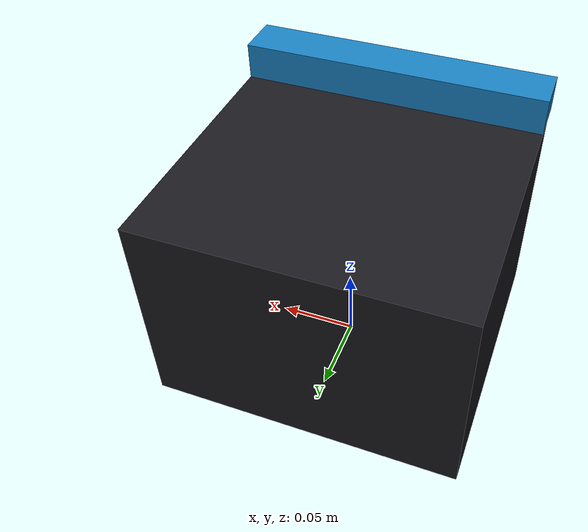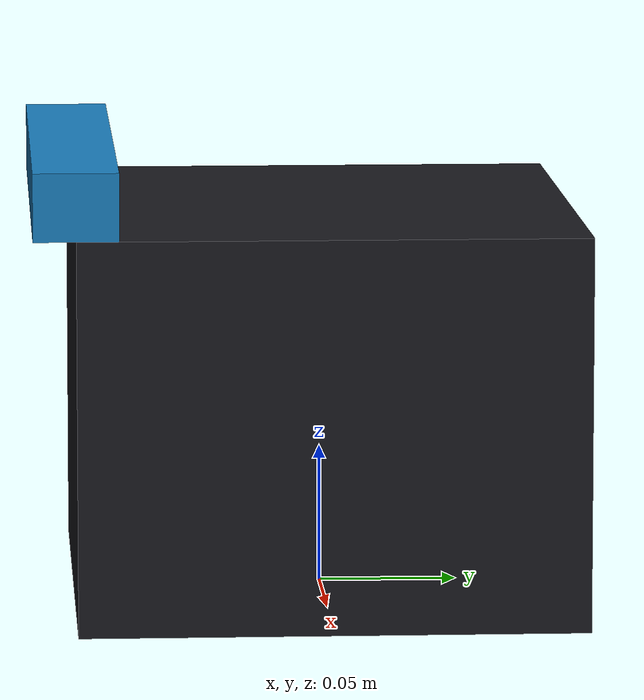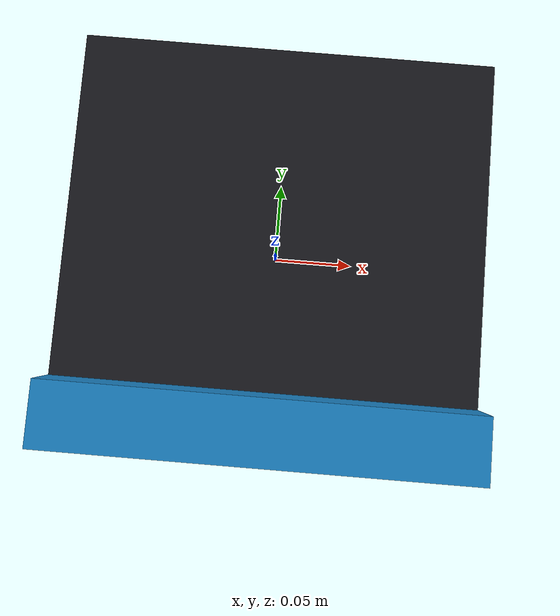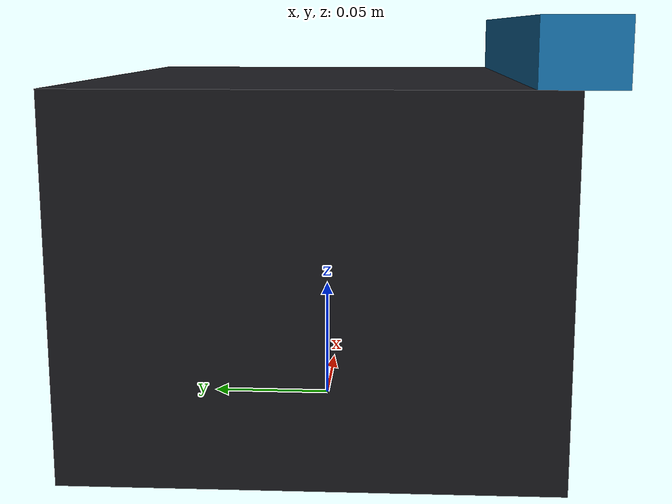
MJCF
<?xml version="1.0" encoding="utf-8"?>
<mujoco model="real_lab_florida_university_flowcytometer">
  <compiler angle="radian" autolimits="true"/>
  <default>
    <default class="body"><geom contype="1" conaffinity="1"/></default>
  </default>
  <worldbody>
    <body name="base">
      <geom type="box" size="0.1 0.09 0.07" pos="0 0 0.07" rgba="0.1 0.1 0.12 1" class="body"/>
      <body name="lid" pos="0 -0.09 0.14">
        <joint name="lid_joint" type="hinge" axis="0 1 0" range="0 1.5" damping="0.6" frictionloss="0.25"/>
  <geom type="box" size="0.1 0.015 0.012" pos="0 0 0.012" rgba="0.1 0.5 0.75 1" class="body"/>
      </body>
    </body>
  </worldbody>
</mujoco>
